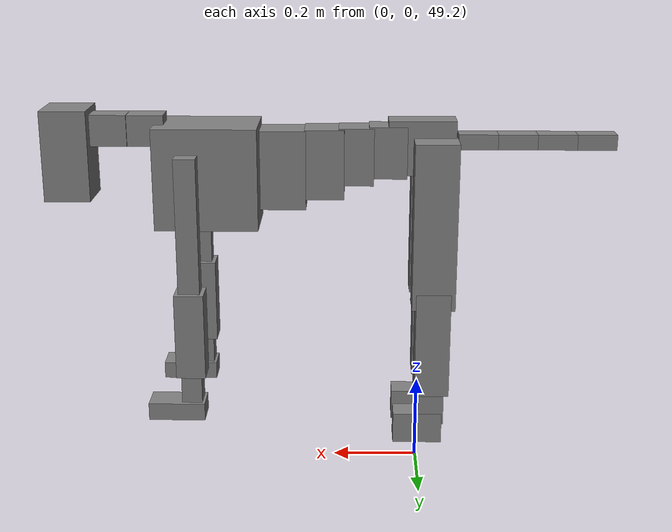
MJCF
<mujoco model="dog">

    <default>
        <joint armature="0.02" stiffness="1" damping="0.2" limited="true"/>
        <geom condim="3" friction="1 0.05 0.05" margin="0.01"/>
        <motor ctrllimited="true" ctrlrange="-1.0 1.0" forcelimited="true" gear="50"/>
    </default>

    <compiler inertiafromgeom="true" angle="radian"/>

    <option timestep="0.016" iterations="50" tolerance="1e-10" solver="Newton" jacobian="dense" cone="pyramidal"/>

    <size nconmax="20000" njmax="60000" nstack="5000000"/>
    <visual>
        <map force="0.1" zfar="30"/>
        <rgba haze="0.15 0.25 0.35 1"/>
        <quality shadowsize="2048"/>
        <global offwidth="800" offheight="800"/>
    </visual>

    <asset>
        <texture type="skybox" builtin="gradient" rgb1="0.3 0.5 0.7" rgb2="0 0 0" width="512" height="512"/>
        <texture name="texplane" type="2d" builtin="checker" rgb1=".2 .3 .4" rgb2=".1 0.15 0.2" width="512" height="512"
                 mark="cross" markrgb=".8 .8 .8"/>
        <texture name="texgeom" type="cube" builtin="flat" mark="cross" width="127" height="1278" rgb1="0.8 0.6 0.4"
                 rgb2="0.8 0.6 0.4" markrgb="1 1 1" random="0.01"/>

        <material name="matplane" reflectance="0.3" texture="texplane" texrepeat="1 1" texuniform="true"/>
        <material name="matgeom" texture="texgeom" texuniform="true" rgba="0.8 0.6 .4 1"/>
    </asset>

    <worldbody>
        <geom name="floor" pos="0 0 0" size="0 0 .25" type="plane" material="matplane" condim="3"/>

        <light directional="false" diffuse=".2 .2 .2" specular="0 0 0" pos="0 0 5" dir="0 0 -1" castshadow="false"/>
        <light mode="targetbodycom" target="torso" directional="false" diffuse=".8 .8 .8" specular="0.3 0.3 0.3"
               pos="0 0 4.0" dir="0 0 -1"/>

        <body name="root" pos="0 0 50">
            <freejoint name="root_1"/>
            <geom type="box" pos="0 0 -0.02" size="0.0774  0.0358  0.063" density="2030"/>

            <body name="spine1" pos="0.054 0 0">
                <joint name="spine1_y" axis="0 1 0" range="0 0.7" limited="true"/>
                <geom type="box" pos="0.02375 0 -0.03" size="0.04375  0.0375  0.05985" density="2030"/>

                <body name="spine2" pos="0.0612 0 0">
                    <joint name="spine2_y" axis="0 1 0" range="-0.15 0.15" limited="true"/>
                    <geom type="box" pos="0.03555  0  -0.04" size="0.04055  0.039  0.06615" density="2030"/>

                    <body name="spine3" pos="0.0730 0 0">
                        <joint name="spine3_y" axis="0 1 0" range="-0.15 0.15" limited="true"/>
                        <geom type="box" pos="0.03555  0  -0.057" size="0.04555  0.0445  0.081" density="2030"/>

                        <body name="spine4" pos="0.0780 0 0">
                            <joint name="spine4_y" axis="0 1 0" range="-0.15 0.15" limited="true"/>
                            <geom type="box" pos="0.05265  0  -0.07" size="0.05265  0.045  0.09135" density="2030"/>

                            <body name="torso" pos="0.1082 0 0">
                                <joint name="torso_y" axis="0 1 0" range="-0.15 0.15" limited="true"/>
                                <geom type="box" pos="0.11925  0  -0.085" size="0.11925  0.085  0.11745"
                                      density="2030"/>

                                <body name="neck1" pos="0.2160  0   0.0180">
                                    <joint name="neck1_y" axis="0 1 0" range="-1.2  -1" limited="true"/>
                                    <geom type="box" pos="0.0423  0  0" size="0.0423  0.03  0.036" density="2325"/>

                                    <body name="neck2" pos="0.0853  0  0">
                                        <joint name="neck2_y" axis="0 1 0" range="0.1  0" limited="true"/>
                                        <geom type="box" pos="0.0423  0  0" size="0.0423  0.03  0.036" density="2325"/>

                                        <body name="head" pos="0.0853  0  0">
                                            <joint name="head_y" axis="0 1 0" range="-0.3  -0.2" limited="true"/>
                                            <geom type="box" pos="0.0531  0  -0.055" size="0.0531  0.06  0.1044"
                                                  density="4030"/>

                                        </body>
                                    </body>
                                </body>

                                <body name="front_shoulder" pos="0.156  0   -0.0480">
                                    <joint name="front_shoulder_y" axis="0 1 0" range="-1 1.5" limited="true"/>
                                    <geom type="box" pos="0 0.13 -0.1428" size="0.0247  0.0211  0.1695" density="1158"/>
                                    <geom type="box" pos="0 -0.13 -0.1428" size="0.0247  0.0211  0.1695"
                                          density="1158"/>

                                    <body name="front_elbow" pos="0  0  -0.2857">
                                        <joint name="front_elbow_y" axis="0 1 0" range="-2 0" limited="true"/>
                                        <geom type="box" pos="0 0.13 -0.0999" size="0.0338  0.0345  0.0999"
                                              density="1081"/>
                                        <geom type="box" pos="0 -0.13 -0.0999" size="0.0338  0.0345  0.0999"
                                              density="1081"/>

                                        <body name="front_wrist" pos="0  0  -0.1998">
                                            <joint name="front_wrist_y" axis="0 1 0" range="-0.2 0" limited="true"/>
                                            <geom type="box" pos="0 0.13 -0.0395" size="0.0236  0.0262  0.0526"
                                                  density="1664"/>
                                            <geom type="box" pos="0 -0.13 -0.0395" size="0.0236  0.0262  0.0526"
                                                  density="1664"/>

                                            <body name="front_finger_end" pos="0  0  -0.0790">
                                                <joint name="front_finger_y" axis="0 1 0" range="-0.4 1"
                                                       limited="true"/>
                                                <geom type="box" pos="0.0357  0.13  -0.0054"
                                                      size="0.0654  0.0357  0.0204" density="1515"/>
                                                <geom type="box" pos="0.0357  -0.13  -0.0054"
                                                      size="0.0654  0.0357  0.0204" density="1515"/>

                                            </body>

                                        </body>
                                    </body>
                                </body>

                            </body>
                        </body>
                    </body>
                </body>
            </body>

            <body name="back_hip" pos="-0.03 0 -0.018">
                <joint name="back_hip_y" axis="0 1 0" range="-1.5 0.3" limited="true"/>
                <geom type="box" pos="0 0.07 -0.1718" size="0.0502  0.0394  0.1946" density="1154"/>
                <geom type="box" pos="0 -0.07 -0.1718" size="0.0502  0.0394  0.1946" density="1154"/>

                <body name="back_knee" pos="0  0  -0.3435">
                    <joint name="back_knee_y" axis="0 1 0" range="0 2.8" limited="true"/>
                    <geom type="box" pos="0 0.07 -0.1104" size="0.0404  0.0398  0.1260" density="1227"/>
                    <geom type="box" pos="0 -0.07 -0.1104" size="0.0404  0.0398  0.1260" density="1227"/>

                    <body name="back_ankle" pos="0  0  -0.2209">
                        <joint name="back_ankle_y" axis="0 1 0" range="-2.2 0" limited="true"/>
                        <geom type="box" pos="0 0.07 -0.0401" size="0.0298  0.0298  0.0513" density="1284"/>
                        <geom type="box" pos="0 -0.07 -0.0401" size="0.0298  0.0298  0.0513" density="1284"/>

                        <body name="back_toe_end" pos="0  0  -0.0801">
                            <joint name="back_toe_y" axis="0 1 0" range="-0.4 1" limited="true"/>
                            <geom type="box" pos="0.0314  0.07  -0.0213" size="0.0576  0.0314  0.0363" density="1515"/>
                            <geom type="box" pos="0.0314  -0.07  -0.0213" size="0.0576  0.0314  0.0363" density="1515"/>

                        </body>
                    </body>
                </body>
            </body>

            <body name="tail1" pos="-0.074 0 -0.006">
                <joint name="tail1_y" axis="0 1 0" range="-0.2 0.2" limited="true"/>
                <geom type="box" pos="-0.0536  0  0" size="0.045  0.025  0.0175" density="1587"/>

                <body name="tail2" pos="-0.09 0 0">
                    <joint name="tail2_y" axis="0 1 0" range="-0.2 0.2" limited="true"/>
                    <geom type="box" pos="-0.0536  0  0" size="0.045  0.025  0.0175" density="1587"/>

                    <body name="tail3" pos="-0.09 0 0">
                        <joint name="tail3_y" axis="0 1 0" range="-0.2 0.2" limited="true"/>
                        <geom type="box" pos="-0.0536  0  0" size="0.045  0.025  0.0175" density="1587"/>

                        <body name="tail4" pos="-0.09 0 0">
                            <joint name="tail4_y" axis="0 1 0" range="-0.2 0.2" limited="true"/>
                            <geom type="box" pos="-0.0536  0  0" size="0.045  0.025  0.0175" density="1587"/>

                        </body>
                    </body>
                </body>
            </body>
        </body>
    </worldbody>

    <actuator>
        <motor joint="spine1_y" forcerange="-150 150     "/>
        <motor joint="spine2_y" forcerange="-150 150     "/>
        <motor joint="spine3_y" forcerange="-150 150     "/>
        <motor joint="spine4_y" forcerange="-150 150     "/>
        <motor joint="torso_y" forcerange="-150 150     "/>
        <motor joint="neck1_y" forcerange="-100 100       "/>
        <motor joint="neck2_y" forcerange="-100 100       "/>
        <motor joint="head_y" forcerange="-150 150       "/>
        <motor joint="front_shoulder_y" forcerange="-128.71 111.88"/>
        <motor joint="front_elbow_y" forcerange="-176.88 174.31"/>
        <motor joint="front_wrist_y" forcerange="-121.62 87.92"/>
        <motor joint="front_finger_y" forcerange="-90.63 59.66"/>
        <motor joint="back_hip_y" forcerange="-363.90 360.91"/>
        <motor joint="back_knee_y" forcerange="-397.72 381.53"/>
        <motor joint="back_angle_y" forcerange="-166.18 210.53"/>
        <motor joint="back_toe_y" forcerange="-80.06 91.22"/>
        <motor joint="tail1_y" forcerange="-50 50     "/>
        <motor joint="tail2_y" forcerange="-50 50     "/>
        <motor joint="tail3_y" forcerange="-50 50     "/>
        <motor joint="tail4_y" forcerange="-50 50     "/>
    </actuator>
</mujoco>
